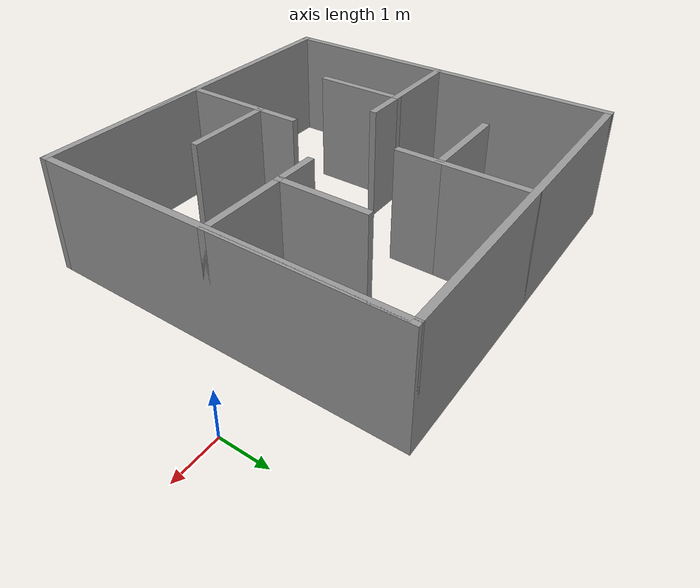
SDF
<?xml version='1.0'?>
<sdf version='1.6'>
  <model name='Equal_Maze'>
    <pose frame=''>-5.37368 -1.46992 0 0 -0 0</pose>
    <link name='Wall_14'>
      <collision name='Wall_14_Collision'>
        <geometry>
          <box>
            <size>8 0.15 2.5</size>
          </box>
        </geometry>
        <pose frame=''>0 0 1.25 0 -0 0</pose>
      </collision>
      <visual name='Wall_14_Visual'>
        <pose frame=''>0 0 1.25 0 -0 0</pose>
        <geometry>
          <box>
            <size>8 0.15 2.5</size>
          </box>
        </geometry>
        <material>
          <script>
            <uri>file://media/materials/scripts/gazebo.material</uri>
            <name>Gazebo/Grey</name>
          </script>
          <ambient>1 1 1 1</ambient>
        </material>
        <meta>
          <layer>0</layer>
        </meta>
      </visual>
      <pose frame=''>0 3.925 0 0 -0 0</pose>
    </link>
    <link name='Wall_15'>
      <collision name='Wall_15_Collision'>
        <geometry>
          <box>
            <size>8 0.15 2.5</size>
          </box>
        </geometry>
        <pose frame=''>0 0 1.25 0 -0 0</pose>
      </collision>
      <visual name='Wall_15_Visual'>
        <pose frame=''>0 0 1.25 0 -0 0</pose>
        <geometry>
          <box>
            <size>8 0.15 2.5</size>
          </box>
        </geometry>
        <material>
          <script>
            <uri>file://media/materials/scripts/gazebo.material</uri>
            <name>Gazebo/Grey</name>
          </script>
          <ambient>1 1 1 1</ambient>
        </material>
        <meta>
          <layer>0</layer>
        </meta>
      </visual>
      <pose frame=''>3.925 0 0 0 -0 -1.5708</pose>
    </link>
    <link name='Wall_16'>
      <collision name='Wall_16_Collision'>
        <geometry>
          <box>
            <size>8 0.15 2.5</size>
          </box>
        </geometry>
        <pose frame=''>0 0 1.25 0 -0 0</pose>
      </collision>
      <visual name='Wall_16_Visual'>
        <pose frame=''>0 0 1.25 0 -0 0</pose>
        <geometry>
          <box>
            <size>8 0.15 2.5</size>
          </box>
        </geometry>
        <material>
          <script>
            <uri>file://media/materials/scripts/gazebo.material</uri>
            <name>Gazebo/Grey</name>
          </script>
          <ambient>1 1 1 1</ambient>
        </material>
        <meta>
          <layer>0</layer>
        </meta>
      </visual>
      <pose frame=''>0 -3.925 0 0 -0 3.14159</pose>
    </link>
    <link name='Wall_17'>
      <collision name='Wall_17_Collision'>
        <geometry>
          <box>
            <size>8 0.15 2.5</size>
          </box>
        </geometry>
        <pose frame=''>0 0 1.25 0 -0 0</pose>
      </collision>
      <visual name='Wall_17_Visual'>
        <pose frame=''>0 0 1.25 0 -0 0</pose>
        <geometry>
          <box>
            <size>8 0.15 2.5</size>
          </box>
        </geometry>
        <material>
          <script>
            <uri>file://media/materials/scripts/gazebo.material</uri>
            <name>Gazebo/Grey</name>
          </script>
          <ambient>1 1 1 1</ambient>
        </material>
        <meta>
          <layer>0</layer>
        </meta>
      </visual>
      <pose frame=''>-3.925 0 0 0 -0 1.5708</pose>
    </link>
    <link name='Wall_18'>
      <collision name='Wall_18_Collision'>
        <geometry>
          <box>
            <size>4 0.15 2.5</size>
          </box>
        </geometry>
        <pose frame=''>0 0 1.25 0 -0 0</pose>
      </collision>
      <visual name='Wall_18_Visual'>
        <pose frame=''>0 0 1.25 0 -0 0</pose>
        <geometry>
          <box>
            <size>4 0.15 2.5</size>
          </box>
        </geometry>
        <material>
          <script>
            <uri>file://media/materials/scripts/gazebo.material</uri>
            <name>Gazebo/Grey</name>
          </script>
          <ambient>1 1 1 1</ambient>
        </material>
        <meta>
          <layer>0</layer>
        </meta>
      </visual>
      <pose frame=''>-2 3.925 0 0 -0 0</pose>
    </link>
    <link name='Wall_19'>
      <collision name='Wall_19_Collision'>
        <geometry>
          <box>
            <size>2 0.15 2.5</size>
          </box>
        </geometry>
        <pose frame=''>0 0 1.25 0 -0 0</pose>
      </collision>
      <visual name='Wall_19_Visual'>
        <pose frame=''>0 0 1.25 0 -0 0</pose>
        <geometry>
          <box>
            <size>2 0.15 2.5</size>
          </box>
        </geometry>
        <material>
          <script>
            <uri>file://media/materials/scripts/gazebo.material</uri>
            <name>Gazebo/Grey</name>
          </script>
          <ambient>1 1 1 1</ambient>
        </material>
        <meta>
          <layer>0</layer>
        </meta>
      </visual>
      <pose frame=''>-0.075 3 0 0 -0 -1.5708</pose>
    </link>
    <link name='Wall_20'>
      <collision name='Wall_20_Collision'>
        <geometry>
          <box>
            <size>2 0.15 2.5</size>
          </box>
        </geometry>
        <pose frame=''>0 0 1.25 0 -0 0</pose>
      </collision>
      <visual name='Wall_20_Visual'>
        <pose frame=''>0 0 1.25 0 -0 0</pose>
        <geometry>
          <box>
            <size>2 0.15 2.5</size>
          </box>
        </geometry>
        <material>
          <script>
            <uri>file://media/materials/scripts/gazebo.material</uri>
            <name>Gazebo/Grey</name>
          </script>
          <ambient>1 1 1 1</ambient>
        </material>
        <meta>
          <layer>0</layer>
        </meta>
      </visual>
      <pose frame=''>-1 2.075 0 0 -0 3.14159</pose>
    </link>
    <link name='Wall_22'>
      <collision name='Wall_22_Collision'>
        <geometry>
          <box>
            <size>4 0.15 2.5</size>
          </box>
        </geometry>
        <pose frame=''>0 0 1.25 0 -0 0</pose>
      </collision>
      <visual name='Wall_22_Visual'>
        <pose frame=''>0 0 1.25 0 -0 0</pose>
        <geometry>
          <box>
            <size>4 0.15 2.5</size>
          </box>
        </geometry>
        <material>
          <script>
            <uri>file://media/materials/scripts/gazebo.material</uri>
            <name>Gazebo/Grey</name>
          </script>
          <ambient>1 1 1 1</ambient>
        </material>
        <meta>
          <layer>0</layer>
        </meta>
      </visual>
      <pose frame=''>3.925 2 0 0 -0 -1.5708</pose>
    </link>
    <link name='Wall_23'>
      <collision name='Wall_23_Collision'>
        <geometry>
          <box>
            <size>2 0.15 2.5</size>
          </box>
        </geometry>
        <pose frame=''>0 0 1.25 0 -0 0</pose>
      </collision>
      <visual name='Wall_23_Visual'>
        <pose frame=''>0 0 1.25 0 -0 0</pose>
        <geometry>
          <box>
            <size>2 0.15 2.5</size>
          </box>
        </geometry>
        <material>
          <script>
            <uri>file://media/materials/scripts/gazebo.material</uri>
            <name>Gazebo/Grey</name>
          </script>
          <ambient>1 1 1 1</ambient>
        </material>
        <meta>
          <layer>0</layer>
        </meta>
      </visual>
      <pose frame=''>3 0.075 0 0 -0 3.14159</pose>
    </link>
    <link name='Wall_24'>
      <collision name='Wall_24_Collision'>
        <geometry>
          <box>
            <size>2 0.15 2.5</size>
          </box>
        </geometry>
        <pose frame=''>0 0 1.25 0 -0 0</pose>
      </collision>
      <visual name='Wall_24_Visual'>
        <pose frame=''>0 0 1.25 0 -0 0</pose>
        <geometry>
          <box>
            <size>2 0.15 2.5</size>
          </box>
        </geometry>
        <material>
          <script>
            <uri>file://media/materials/scripts/gazebo.material</uri>
            <name>Gazebo/Grey</name>
          </script>
          <ambient>1 1 1 1</ambient>
        </material>
        <meta>
          <layer>0</layer>
        </meta>
      </visual>
      <pose frame=''>2.075 1 0 0 -0 1.5708</pose>
    </link>
    <link name='Wall_26'>
      <collision name='Wall_26_Collision'>
        <geometry>
          <box>
            <size>4 0.15 2.5</size>
          </box>
        </geometry>
        <pose frame=''>0 0 1.25 0 -0 0</pose>
      </collision>
      <visual name='Wall_26_Visual'>
        <pose frame=''>0 0 1.25 0 -0 0</pose>
        <geometry>
          <box>
            <size>4 0.15 2.5</size>
          </box>
        </geometry>
        <material>
          <script>
            <uri>file://media/materials/scripts/gazebo.material</uri>
            <name>Gazebo/Grey</name>
          </script>
          <ambient>1 1 1 1</ambient>
        </material>
        <meta>
          <layer>0</layer>
        </meta>
      </visual>
      <pose frame=''>2 -3.925 0 0 -0 3.14159</pose>
    </link>
    <link name='Wall_27'>
      <collision name='Wall_27_Collision'>
        <geometry>
          <box>
            <size>2 0.15 2.5</size>
          </box>
        </geometry>
        <pose frame=''>0 0 1.25 0 -0 0</pose>
      </collision>
      <visual name='Wall_27_Visual'>
        <pose frame=''>0 0 1.25 0 -0 0</pose>
        <geometry>
          <box>
            <size>2 0.15 2.5</size>
          </box>
        </geometry>
        <material>
          <script>
            <uri>file://media/materials/scripts/gazebo.material</uri>
            <name>Gazebo/Grey</name>
          </script>
          <ambient>1 1 1 1</ambient>
        </material>
        <meta>
          <layer>0</layer>
        </meta>
      </visual>
      <pose frame=''>0.075 -3 0 0 -0 1.5708</pose>
    </link>
    <link name='Wall_28'>
      <collision name='Wall_28_Collision'>
        <geometry>
          <box>
            <size>2 0.15 2.5</size>
          </box>
        </geometry>
        <pose frame=''>0 0 1.25 0 -0 0</pose>
      </collision>
      <visual name='Wall_28_Visual'>
        <pose frame=''>0 0 1.25 0 -0 0</pose>
        <geometry>
          <box>
            <size>2 0.15 2.5</size>
          </box>
        </geometry>
        <material>
          <script>
            <uri>file://media/materials/scripts/gazebo.material</uri>
            <name>Gazebo/Grey</name>
          </script>
          <ambient>1 1 1 1</ambient>
        </material>
        <meta>
          <layer>0</layer>
        </meta>
      </visual>
      <pose frame=''>1 -2.075 0 0 -0 0</pose>
    </link>
    <link name='Wall_30'>
      <collision name='Wall_30_Collision'>
        <geometry>
          <box>
            <size>4 0.15 2.5</size>
          </box>
        </geometry>
        <pose frame=''>0 0 1.25 0 -0 0</pose>
      </collision>
      <visual name='Wall_30_Visual'>
        <pose frame=''>0 0 1.25 0 -0 0</pose>
        <geometry>
          <box>
            <size>4 0.15 2.5</size>
          </box>
        </geometry>
        <material>
          <script>
            <uri>file://media/materials/scripts/gazebo.material</uri>
            <name>Gazebo/Grey</name>
          </script>
          <ambient>1 1 1 1</ambient>
        </material>
        <meta>
          <layer>0</layer>
        </meta>
      </visual>
      <pose frame=''>-3.925 -2 0 0 -0 1.5708</pose>
    </link>
    <link name='Wall_31'>
      <collision name='Wall_31_Collision'>
        <geometry>
          <box>
            <size>2 0.15 2.5</size>
          </box>
        </geometry>
        <pose frame=''>0 0 1.25 0 -0 0</pose>
      </collision>
      <visual name='Wall_31_Visual'>
        <pose frame=''>0 0 1.25 0 -0 0</pose>
        <geometry>
          <box>
            <size>2 0.15 2.5</size>
          </box>
        </geometry>
        <material>
          <script>
            <uri>file://media/materials/scripts/gazebo.material</uri>
            <name>Gazebo/Grey</name>
          </script>
          <ambient>1 1 1 1</ambient>
        </material>
        <meta>
          <layer>0</layer>
        </meta>
      </visual>
      <pose frame=''>-3 -0.075 0 0 -0 0</pose>
    </link>
    <link name='Wall_32'>
      <collision name='Wall_32_Collision'>
        <geometry>
          <box>
            <size>2 0.15 2.5</size>
          </box>
        </geometry>
        <pose frame=''>0 0 1.25 0 -0 0</pose>
      </collision>
      <visual name='Wall_32_Visual'>
        <pose frame=''>0 0 1.25 0 -0 0</pose>
        <geometry>
          <box>
            <size>2 0.15 2.5</size>
          </box>
        </geometry>
        <material>
          <script>
            <uri>file://media/materials/scripts/gazebo.material</uri>
            <name>Gazebo/Grey</name>
          </script>
          <ambient>1 1 1 1</ambient>
        </material>
        <meta>
          <layer>0</layer>
        </meta>
      </visual>
      <pose frame=''>-2.075 -1 0 0 -0 -1.5708</pose>
    </link>
    <link name='Wall_34'>
      <collision name='Wall_34_Collision'>
        <geometry>
          <box>
            <size>1 0.15 2.5</size>
          </box>
        </geometry>
        <pose frame=''>0 0 1.25 0 -0 0</pose>
      </collision>
      <visual name='Wall_34_Visual'>
        <pose frame=''>0 0 1.25 0 -0 0</pose>
        <geometry>
          <box>
            <size>1 0.15 2.5</size>
          </box>
        </geometry>
        <material>
          <script>
            <uri>file://media/materials/scripts/gazebo.material</uri>
            <name>Gazebo/Grey</name>
          </script>
          <ambient>1 1 1 1</ambient>
        </material>
        <meta>
          <layer>0</layer>
        </meta>
      </visual>
      <pose frame=''>-1.65 -0.075 0 0 -0 0</pose>
    </link>
    <link name='Wall_36'>
      <collision name='Wall_36_Collision'>
        <geometry>
          <box>
            <size>1 0.15 2.5</size>
          </box>
        </geometry>
        <pose frame=''>0 0 1.25 0 -0 0</pose>
      </collision>
      <visual name='Wall_36_Visual'>
        <pose frame=''>0 0 1.25 0 -0 0</pose>
        <geometry>
          <box>
            <size>1 0.15 2.5</size>
          </box>
        </geometry>
        <material>
          <script>
            <uri>file://media/materials/scripts/gazebo.material</uri>
            <name>Gazebo/Grey</name>
          </script>
          <ambient>1 1 1 1</ambient>
        </material>
        <meta>
          <layer>0</layer>
        </meta>
      </visual>
      <pose frame=''>-0.075 1.65 0 0 -0 -1.5708</pose>
    </link>
    <link name='Wall_38'>
      <collision name='Wall_38_Collision'>
        <geometry>
          <box>
            <size>1 0.15 2.5</size>
          </box>
        </geometry>
        <pose frame=''>0 0 1.25 0 -0 0</pose>
      </collision>
      <visual name='Wall_38_Visual'>
        <pose frame=''>0 0 1.25 0 -0 0</pose>
        <geometry>
          <box>
            <size>1 0.15 2.5</size>
          </box>
        </geometry>
        <material>
          <script>
            <uri>file://media/materials/scripts/gazebo.material</uri>
            <name>Gazebo/Grey</name>
          </script>
          <ambient>1 1 1 1</ambient>
        </material>
        <meta>
          <layer>0</layer>
        </meta>
      </visual>
      <pose frame=''>1.65 0.075 0 0 -0 3.14159</pose>
    </link>
    <link name='Wall_40'>
      <collision name='Wall_40_Collision'>
        <geometry>
          <box>
            <size>1 0.15 2.5</size>
          </box>
        </geometry>
        <pose frame=''>0 0 1.25 0 -0 0</pose>
      </collision>
      <visual name='Wall_40_Visual'>
        <pose frame=''>0 0 1.25 0 -0 0</pose>
        <geometry>
          <box>
            <size>1 0.15 2.5</size>
          </box>
        </geometry>
        <material>
          <script>
            <uri>file://media/materials/scripts/gazebo.material</uri>
            <name>Gazebo/Grey</name>
          </script>
          <ambient>1 1 1 1</ambient>
        </material>
        <meta>
          <layer>0</layer>
        </meta>
      </visual>
      <pose frame=''>0.075 -1.65 0 0 -0 1.5708</pose>
    </link>
    <static>1</static>
  </model>
</sdf>
